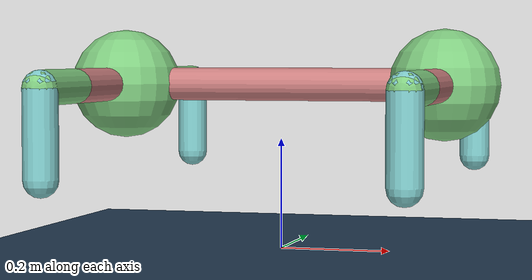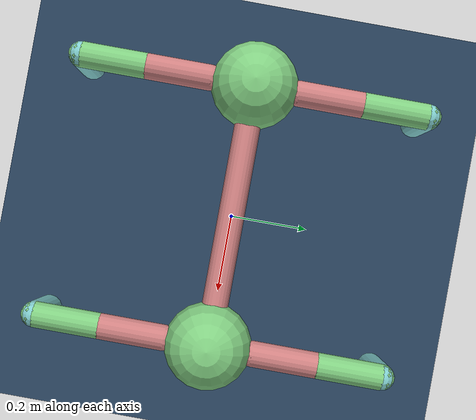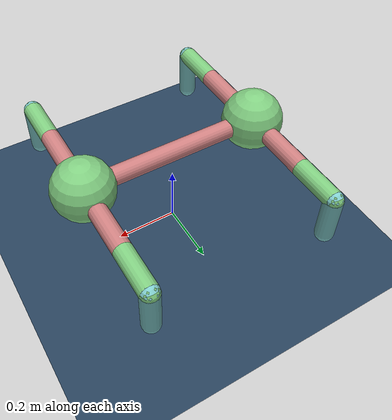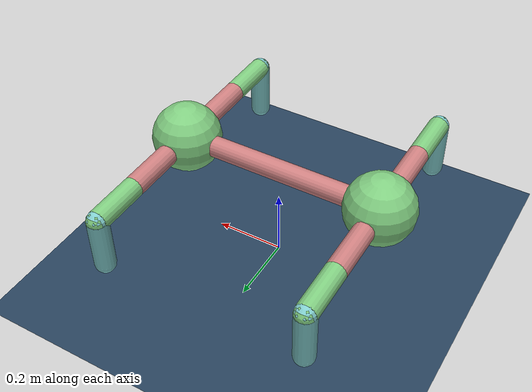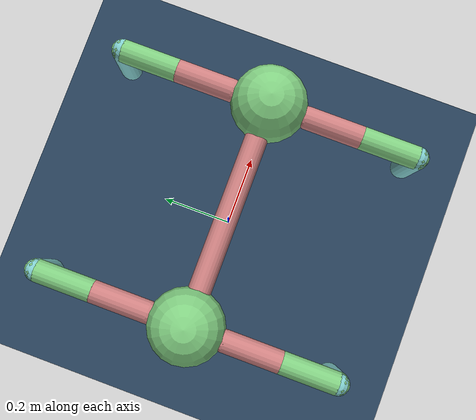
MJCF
<mujoco model="floor">
  <compiler boundmass="1.0000000000000001e-05" boundinertia="9.9999999999999994e-12" coordinate="local" angle="degree" eulerseq="xyz"/>
  <option timestep="0.002" cone="elliptic" noslip_iterations="5" noslip_tolerance="0"/>
  <visual>
    <headlight ambient="0.40000000000000002 0.40000000000000002 0.40000000000000002" diffuse="0.80000000000000004 0.80000000000000004 0.80000000000000004" specular="0.10000000000000001 0.10000000000000001 0.10000000000000001"/>
    <map znear="0.01"/>
    <scale forcewidth="0.01" contactwidth="0.059999999999999998" contactheight="0.01" jointwidth="0.01" framelength="0.29999999999999999" framewidth="0.01"/>
  </visual>
  <default>
    <default class="/"/>
    <default class="crawler/"/>
    <default class="crawler/leg/">
      <joint type="hinge" damping="2"/>
      <geom type="capsule" rgba="0.5 0.8 0.8 1"/>
      <position ctrllimited="true" ctrlrange="-0.5 0.5"/>
    </default>
    <default class="crawler/leg_1/">
      <joint type="hinge" damping="2"/>
      <geom type="capsule" rgba="0.5 0.80000000000000004 0.80000000000000004 1"/>
      <position ctrllimited="true" ctrlrange="-0.5 0.5"/>
    </default>
    <default class="crawler/leg_2/">
      <joint type="hinge" damping="2"/>
      <geom type="capsule" rgba="0.5 0.80000000000000004 0.80000000000000004 1"/>
      <position ctrllimited="true" ctrlrange="-0.5 0.5"/>
    </default>
  </default>
  <asset>
    <texture name="groundplane" type="2d" builtin="checker" rgb1="0.20000000000000001 0.29999999999999999 0.40000000000000002" rgb2="0.10000000000000001 0.20000000000000001 0.29999999999999999" mark="edge" markrgb="0.80000000000000004 0.80000000000000004 0.80000000000000004" width="200" height="200"/>
    <material name="groundplane" class="/" texture="groundplane" texrepeat="2 2" texuniform="true" reflectance="0.20000000000000001"/>
  </asset>
  <worldbody>
    <geom name="groundplane" class="/" type="plane" size="8 8 0.25" material="groundplane"/>
    <camera name="top_camera" class="/" fovy="10.058147163570894" pos="0 0 100" quat="1 0 0 0"/>
    <light name="//unnamed_light_0" class="/" pos="0 0 4"/>
    <body name="crawler/" pos="0 0 0.3">
      <freejoint name="crawler/"/>

      <geom name="crawler/backbone" class="crawler/" type="cylinder" size="0.03 0.3 0.1" rgba="0.8 0.5 0.5 1" euler="0 90 0"/>

      <body pos="-0.3 0 0">
        <geom name="crawler/head" class="crawler/" type="sphere" size="0.1" pos="0 0 0" rgba="0.5 0.8 0.5 1"/>

        <body pos="0 0.1 0" euler="0 0 90" name="crawler/leg/">
          <joint name="crawler/leg//unnamed_joint_0" class="crawler/leg/" axis="0 0 1"/>
          <geom name="crawler/leg//unnamed_geom_0" class="crawler/leg/" size="0.03" fromto="0 0 0 0.15 0 0" rgba="0.8 0.5 0.5 1"/>
          <body name="crawler/leg/shin" pos="0.15 0 0">
            <joint name="crawler/leg//unnamed_joint_1" class="crawler/leg/" axis="0 1 0"/>
            <geom name="crawler/leg//unnamed_geom_1" class="crawler/leg/" size="0.03" fromto="0 0 0 0.15 0 0" rgba="0.5 0.8 0.5 1"/>
            <body name="crawler/leg/feet" pos="0.15 0 0">
              <joint name="crawler/leg/feet/unnamed_joint_1" class="crawler/leg/" axis="0 1 0"/>
              <geom name="crawler/leg/feet/unnamed_geom_1" class="crawler/leg/" size="0.03" fromto="0 0 0 0 0 -0.15"/>
            </body>
          </body>
        </body>

        <body pos="0 -0.1 0" euler="0 0 -90">
          <joint class="crawler/leg/" axis="0 0 1"/>
          <geom class="crawler/leg/" size="0.03" fromto="0 0 0 0.15 0 0" rgba="0.8 0.5 0.5 1"/>
          <body  pos="0.15 0 0">
            <joint class="crawler/leg/" axis="0 1 0"/>
            <geom class="crawler/leg/" size="0.03" fromto="0 0 0 0.15 0 0" rgba="0.5 0.8 0.5 1"/>
            <body pos="0.15 0 0">
              <joint class="crawler/leg/" axis="0 1 0"/>
              <geom class="crawler/leg/" size="0.03" fromto="0 0 0 0 0 -0.15"/>
            </body>
          </body>
        </body>
      </body>

      <body pos="0.3 0 0">
        <geom name="crawler/tail" class="crawler/" type="sphere" size="0.1" rgba="0.5 0.8 0.5 1"/>

        <body pos="0 0.1 0" euler="0 0 90">
          <joint class="crawler/leg/" axis="0 0 1"/>
          <geom class="crawler/leg/" size="0.03" fromto="0 0 0 0.15 0 0" rgba="0.8 0.5 0.5 1"/>
          <body  pos="0.15 0 0">
            <joint class="crawler/leg/" axis="0 1 0"/>
            <geom class="crawler/leg/" size="0.03" fromto="0 0 0 0.15 0 0" rgba="0.5 0.8 0.5 1"/>
            <body pos="0.15 0 0">
              <joint class="crawler/leg/" axis="0 1 0"/>
              <geom class="crawler/leg/" size="0.03" fromto="0 0 0 0 0 -0.15"/>
            </body>
          </body>
        </body>

        <body pos="0 -0.1 0" euler="0 0 -90">
          <joint class="crawler/leg/" axis="0 0 1"/>
          <geom class="crawler/leg/" size="0.03" fromto="0 0 0 0.15 0 0" rgba="0.8 0.5 0.5 1"/>
          <body  pos="0.15 0 0">
            <joint class="crawler/leg/" axis="0 1 0"/>
            <geom class="crawler/leg/" size="0.03" fromto="0 0 0 0.15 0 0" rgba="0.5 0.8 0.5 1"/>
            <body pos="0.15 0 0">
              <joint class="crawler/leg/" axis="0 1 0"/>
              <geom class="crawler/leg/" size="0.03" fromto="0 0 0 0 0 -0.15"/>
            </body>
          </body>
        </body>

      </body>

    </body>
  </worldbody>
</mujoco>
